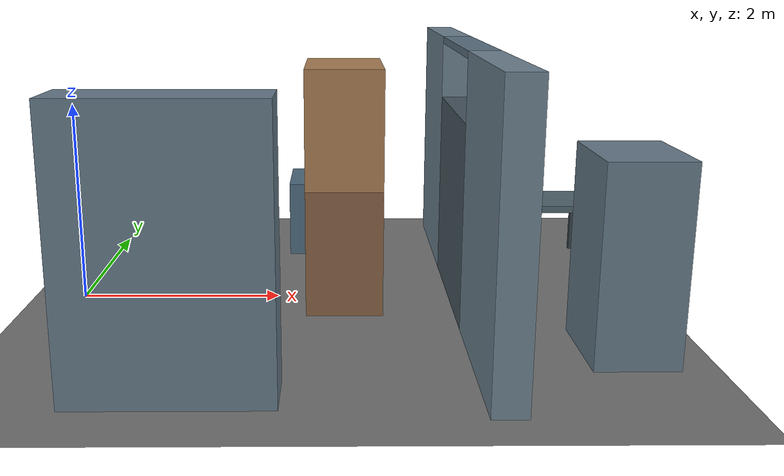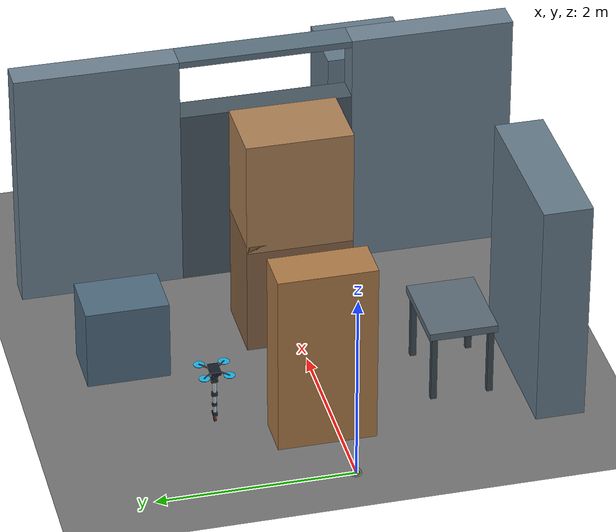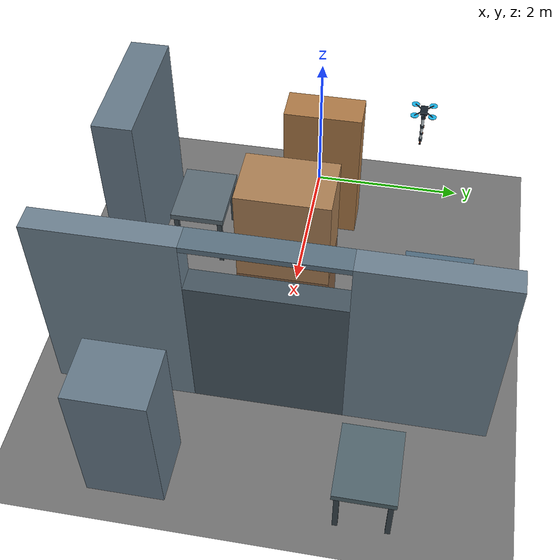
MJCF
<mujoco model="aerial_manipulator_workcell">
  <compiler angle="radian" autolimits="true"/>
  <default>
    <default class="quadrotor_parts"><geom contype="1" conaffinity="1"/></default>
  </default>
  <option timestep="0.001" gravity="0 0 -9.81" integrator="Euler"/>
  <size nuser_site="1"/>
  <statistic center="2.6 0 1.3" extent="4.5"/>
  <custom>
    <numeric name="planning_bounds" data="-0.6 -2.4 -2.7 5.8 2.4 -0.85"/>
    <numeric name="flight_limits" data="3 2 8 12 0.7"/>
    <numeric name="pick_position_ned" data="1.45 1.35 -0.95"/>
    <numeric name="place_position_ned" data="5.05 -1.30 -0.85"/>
    <numeric name="pick_yaw" data="0"/>
    <numeric name="place_yaw" data="0"/>
    <numeric name="pick_nominal_joints" data="0 0 0 0"/>
    <numeric name="place_nominal_joints" data="0 0 0 0"/>
    <numeric name="gripper_open" data="0.060"/>
    <numeric name="gripper_closed" data="0.025"/>
  </custom>
  <visual>
    <global azimuth="135" elevation="-25"/>
    <map znear="0.01" zfar="30"/>
    <quality offsamples="4"/>
  </visual>
  <asset>
    <texture name="ground_grid" type="2d" builtin="checker" width="512" height="512"
             rgb1="0.55 0.55 0.55" rgb2="0.35 0.35 0.35"/>
    <material name="ground" texture="ground_grid" texrepeat="8 8" texuniform="true"
              reflectance="0.1"/>
  </asset>
  <worldbody>
    <light name="sun" pos="2.5 0 8" dir="-0.3 0.2 -1" directional="true"/>
    <geom name="ground" type="plane" size="8 5 0.1" material="ground"/>

    <!-- NED coordinates are converted as (x,y,z)_ENU=(x,-y,-z)_NED. -->
    <!-- Loaded pallet stacks and the pick-side storage rack. -->
    <geom name="obstacle_entry_cartons" type="box" pos="0.775 0.15 0.975"
          size="0.225 0.5 0.975" rgba="0.68 0.48 0.28 1"/>
    <geom name="obstacle_rear_storage" type="box" pos="1.30 -2.20 1.20"
          size="0.85 0.25 1.20" rgba="0.40 0.48 0.54 1"/>

    <!-- Open pick bench: an 8 cm work surface on four 6 cm square legs. -->
    <geom name="obstacle_pick_bench_top" type="box" pos="1.45 -1.35 0.76"
          size="0.45 0.35 0.04" rgba="0.36 0.42 0.46 1"/>
    <geom name="obstacle_pick_bench_leg_fl" type="box" pos="1.06 -1.06 0.36"
          size="0.03 0.03 0.36" rgba="0.24 0.29 0.32 1"/>
    <geom name="obstacle_pick_bench_leg_fr" type="box" pos="1.84 -1.06 0.36"
          size="0.03 0.03 0.36" rgba="0.24 0.29 0.32 1"/>
    <geom name="obstacle_pick_bench_leg_bl" type="box" pos="1.06 -1.64 0.36"
          size="0.03 0.03 0.36" rgba="0.24 0.29 0.32 1"/>
    <geom name="obstacle_pick_bench_leg_br" type="box" pos="1.84 -1.64 0.36"
          size="0.03 0.03 0.36" rgba="0.24 0.29 0.32 1"/>

    <!-- A loaded central rack island leaves broad north and south routes. -->
    <geom name="obstacle_rack_island_lower" type="box" pos="2.675 0 0.62"
          size="0.375 0.55 0.62" rgba="0.53 0.39 0.27 1"/>
    <geom name="obstacle_rack_island_upper" type="box" pos="2.675 0 1.78"
          size="0.375 0.55 0.62" rgba="0.67 0.50 0.33 1"/>
    <geom name="obstacle_low_tote" type="box" pos="2.35 1.825 0.425"
          size="0.30 0.425 0.425" rgba="0.31 0.42 0.50 1"/>

    <!-- Transfer machine: conveyor, overhead housing, and side cabinets.
         The 1.80 m wide by 0.58 m high opening is raised 1 m to z=[1.95, 2.53]. -->
    <geom name="obstacle_transfer_conveyor" type="box" pos="3.90 0 0.975"
          size="0.15 0.90 0.975" rgba="0.28 0.34 0.38 1"/>
    <geom name="obstacle_transfer_hood" type="box" pos="3.90 0 2.565"
          size="0.15 0.90 0.035" rgba="0.36 0.45 0.51 1"/>
    <geom name="obstacle_transfer_cabinet_south" type="box" pos="3.90 1.75 1.30"
          size="0.15 0.85 1.30" rgba="0.43 0.51 0.57 1"/>
    <geom name="obstacle_transfer_cabinet_north" type="box" pos="3.90 -1.75 1.30"
          size="0.15 0.85 1.30" rgba="0.43 0.51 0.57 1"/>

    <!-- Place bench and downstream storage cabinet. -->
    <geom name="obstacle_pack_bench_top" type="box" pos="5.05 1.30 0.66"
          size="0.45 0.35 0.04" rgba="0.32 0.40 0.43 1"/>
    <geom name="obstacle_pack_bench_leg_fl" type="box" pos="4.66 1.01 0.31"
          size="0.03 0.03 0.31" rgba="0.22 0.27 0.30 1"/>
    <geom name="obstacle_pack_bench_leg_fr" type="box" pos="5.44 1.01 0.31"
          size="0.03 0.03 0.31" rgba="0.22 0.27 0.30 1"/>
    <geom name="obstacle_pack_bench_leg_bl" type="box" pos="4.66 1.59 0.31"
          size="0.03 0.03 0.31" rgba="0.22 0.27 0.30 1"/>
    <geom name="obstacle_pack_bench_leg_br" type="box" pos="5.44 1.59 0.31"
          size="0.03 0.03 0.31" rgba="0.22 0.27 0.30 1"/>
    <geom name="obstacle_outbound_storage" type="box" pos="5.125 -1.35 0.90"
          size="0.375 0.45 0.90" rgba="0.40 0.48 0.54 1"/>

    <body name="quadrotor" pos="0 1.4 1.45" childclass="quadrotor_parts">
      <include file="../model/aerial_manipulator.xml"/>
    </body>
    <body name="payload_marker" mocap="true">
      <geom name="payload_marker_geom" type="sphere" size="0.035"
            rgba="0.95 0.35 0.08 1" contype="0" conaffinity="0"/>
    </body>
    <body name="pick_target_marker" mocap="true">
      <geom name="pick_target_geom" type="sphere" size="0.055"
            rgba="0.2 0.9 0.35 0.35" contype="0" conaffinity="0"/>
    </body>
    <body name="place_target_marker" mocap="true">
      <geom name="place_target_geom" type="sphere" size="0.055"
            rgba="0.2 0.45 1.0 0.35" contype="0" conaffinity="0"/>
    </body>
  </worldbody>
  <actuator>
    <motor name="arm_motor_0" joint="arm_joint_0" ctrlrange="-0.8 0.8" ctrllimited="true"/>
    <motor name="arm_motor_1" joint="arm_joint_1" ctrlrange="-0.8 0.8" ctrllimited="true"/>
    <motor name="arm_motor_2" joint="arm_joint_2" ctrlrange="-0.6 0.6" ctrllimited="true"/>
    <motor name="arm_motor_3" joint="arm_joint_3" ctrlrange="-0.4 0.4" ctrllimited="true"/>
    <position name="gripper_position" joint="gripper_left_joint" kp="120" kv="3"
              ctrlrange="0 0.025" ctrllimited="true" forcerange="-2 2" forcelimited="true"/>
  </actuator>
  <equality>
    <joint name="gripper_finger_sync" joint1="gripper_right_joint"
           joint2="gripper_left_joint" polycoef="0 1 0 0 0"/>
  </equality>
</mujoco>

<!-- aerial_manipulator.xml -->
<mujocoinclude>
  <!-- Quadrotor base with a four-joint arm and lightweight parallel gripper. -->
    <site name="planning_sphere_01" type="sphere" pos="0 0 0" size="0.098" group="5" rgba="0.2 0.6 1 0.15" />
    <site name="planning_sphere_02" type="sphere" pos="-0.120208 -0.120208 0" size="0.08" group="5" rgba="0.2 0.6 1 0.15" />
    <site name="planning_sphere_03" type="sphere" pos="-0.120208 0.120208 0" size="0.08" group="5" rgba="0.2 0.6 1 0.15" />
    <site name="planning_sphere_04" type="sphere" pos="0.120208 -0.120208 0" size="0.08" group="5" rgba="0.2 0.6 1 0.15" />
    <site name="planning_sphere_05" type="sphere" pos="0.120208 0.120208 0" size="0.08" group="5" rgba="0.2 0.6 1 0.15" />
  <freejoint name="quadrotor_freejoint" />
  <inertial pos="0 0 0" mass="0.5" diaginertia="0.0023 0.0023 0.0046" />
  <geom name="body" type="box" size="0.08 0.05 0.02" rgba="0.08 0.12 0.16 1" contype="1" conaffinity="1" />
  <geom name="arm_0" type="capsule" fromto="-0.120208 0.120208 0 0.120208 -0.120208 0" size="0.008" rgba="0.25 0.25 0.28 1" />
  <geom name="arm_1" type="capsule" fromto="-0.120208 -0.120208 0 0.120208 0.120208 0" size="0.008" rgba="0.25 0.25 0.28 1" />
  <site name="rotor_0" pos="0.120208 0.120208 0" size="0.008" user="1" rgba="0 0.7 1 1" />
  <site name="rotor_1" pos="0.120208 -0.120208 0" size="0.008" user="-1" rgba="0 0.7 1 1" />
  <site name="rotor_2" pos="-0.120208 -0.120208 0" size="0.008" user="1" rgba="0 0.7 1 1" />
  <site name="rotor_3" pos="-0.120208 0.120208 0" size="0.008" user="-1" rgba="0 0.7 1 1" />
  <geom name="rotor_visual_0" type="cylinder" pos="0.120208 0.120208 0" size="0.055 0.002" rgba="0.1 0.7 0.9 1" />
  <geom name="rotor_visual_1" type="cylinder" pos="0.120208 -0.120208 0" size="0.055 0.002" rgba="0.1 0.7 0.9 1" />
  <geom name="rotor_visual_2" type="cylinder" pos="-0.120208 -0.120208 0" size="0.055 0.002" rgba="0.1 0.7 0.9 1" />
  <geom name="rotor_visual_3" type="cylinder" pos="-0.120208 0.120208 0" size="0.055 0.002" rgba="0.1 0.7 0.9 1" />
  <!-- Arm links and gripper dimensions are simulation-scale assumptions. -->
  <body name="arm_base" pos="0 0 -0.055">
    <site name="planning_sphere_06" type="sphere" pos="0 0 -0.01" size="0.04" group="5" rgba="0.2 0.6 1 0.15" />
    <site name="planning_sphere_07" type="sphere" pos="0 0 -0.06" size="0.027" group="5" rgba="0.2 0.6 1 0.15" />
    <joint name="arm_joint_0" type="hinge" axis="0 0 1" range="-2.8 2.8" damping="0.08" armature="0.002" />
    <inertial pos="0 0 -0.020" mass="0.015" diaginertia="0.000012 0.000012 0.000008" />
    <geom name="arm_yaw_housing" type="cylinder" pos="0 0 -0.010" size="0.034 0.020" rgba="0.12 0.17 0.22 1" />
    <geom name="arm_yaw_cap" type="cylinder" pos="0 0 -0.032" size="0.025 0.005" rgba="0.88 0.34 0.12 1" contype="0" conaffinity="0" />
    <geom name="arm_link_0" type="capsule" fromto="0 0 0 0 0 -0.06" size="0.018" />
    <body name="arm_link_1_body" pos="0 0 -0.06">
    <site name="planning_sphere_08" type="sphere" pos="0 0 0" size="0.043" group="5" rgba="0.2 0.6 1 0.15" />
    <site name="planning_sphere_09" type="sphere" pos="0 0 -0.075" size="0.047" group="5" rgba="0.2 0.6 1 0.15" />
    <site name="planning_sphere_10" type="sphere" pos="0 0 -0.15" size="0.034" group="5" rgba="0.2 0.6 1 0.15" />
      <joint name="arm_joint_1" type="hinge" axis="0 1 0" range="-2.2 2.2" damping="0.06" armature="0.0015" />
      <inertial pos="0 0 -0.08" mass="0.035" diaginertia="0.000080 0.000080 0.000018" />
      <geom name="shoulder_housing" type="cylinder" size="0.031 0.028" quat="0.707107 0.707107 0 0" rgba="0.12 0.17 0.22 1" />
      <geom name="shoulder_cap" type="cylinder" pos="0 0.029 0" size="0.020 0.005" quat="0.707107 0.707107 0 0" rgba="0.88 0.34 0.12 1" contype="0" conaffinity="0" />
      <geom name="arm_link_1" type="capsule" fromto="0 0 0 0 0 -0.16" size="0.020" rgba="0.72 0.76 0.78 1" />
      <body name="arm_link_2_body" pos="0 0 -0.16">
    <site name="planning_sphere_11" type="sphere" pos="0 0 0" size="0.038" group="5" rgba="0.2 0.6 1 0.15" />
    <site name="planning_sphere_12" type="sphere" pos="0 0 -0.065" size="0.041" group="5" rgba="0.2 0.6 1 0.15" />
    <site name="planning_sphere_13" type="sphere" pos="0 0 -0.12" size="0.025" group="5" rgba="0.2 0.6 1 0.15" />
        <joint name="arm_joint_2" type="hinge" axis="0 1 0" range="-2.4 2.4" damping="0.05" armature="0.001" />
        <inertial pos="0 0 -0.06" mass="0.025" diaginertia="0.000030 0.000030 0.000006" />
        <geom name="elbow_housing" type="cylinder" size="0.028 0.025" quat="0.707107 0.707107 0 0" rgba="0.12 0.17 0.22 1" />
        <geom name="elbow_cap" type="cylinder" pos="0 0.026 0" size="0.018 0.005" quat="0.707107 0.707107 0 0" rgba="0.88 0.34 0.12 1" contype="0" conaffinity="0" />
        <geom name="arm_link_2" type="capsule" fromto="0 0 0 0 0 -0.12" size="0.018" rgba="0.72 0.76 0.78 1" />
        <body name="arm_link_3_body" pos="0 0 -0.12">
    <site name="planning_sphere_14" type="sphere" pos="0 0 0" size="0.032" group="5" rgba="0.2 0.6 1 0.15" />
    <site name="planning_sphere_15" type="sphere" pos="0 0 -0.061" size="0.036" group="5" rgba="0.2 0.6 1 0.15" />
    <site name="planning_sphere_16" type="sphere" pos="0 0 -0.09" size="0.018" group="5" rgba="0.2 0.6 1 0.15" />
          <joint name="arm_joint_3" type="hinge" axis="0 1 0" range="-2.4 2.4" damping="0.04" armature="0.0008" />
          <inertial pos="0 0 -0.045" mass="0.015" diaginertia="0.000011 0.000011 0.000003" />
          <geom name="wrist_housing" type="cylinder" size="0.023 0.021" quat="0.707107 0.707107 0 0" rgba="0.12 0.17 0.22 1" />
          <geom name="wrist_cap" type="cylinder" pos="0 0.022 0" size="0.015 0.004" quat="0.707107 0.707107 0 0" rgba="0.88 0.34 0.12 1" contype="0" conaffinity="0" />
          <geom name="arm_link_3" type="capsule" fromto="0 0 0 0 0 -0.09" size="0.016" rgba="0.72 0.76 0.78 1" />
          <!-- Frames used by end-effector pose, Jacobian, and grasp queries. -->
          <site name="tool_frame" pos="0 0 -0.09" size="0.010" rgba="0.95 0.3 0.1 1" />
          <body name="gripper_palm_body" pos="0 0 -0.105">
    <site name="planning_sphere_17" type="sphere" pos="0 0 0" size="0.043" group="5" rgba="0.2 0.6 1 0.15" />
            <site name="grasp_frame" pos="0 0 -0.065" size="0.008" rgba="0.2 0.9 0.35 1" />
            <inertial pos="0 0 0" mass="0.015" diaginertia="0.000008 0.000012 0.000016" />
            <geom name="gripper_palm" type="box" size="0.034 0.022 0.014" rgba="0.12 0.17 0.22 1" />
            <body name="gripper_left_body" pos="-0.018 0 -0.01">
    <site name="planning_sphere_18" type="sphere" pos="0 0 -0.018" size="0.028" group="5" rgba="0.2 0.6 1 0.15" />
    <site name="planning_sphere_19" type="sphere" pos="0 0 -0.055" size="0.024" group="5" rgba="0.2 0.6 1 0.15" />
              <joint name="gripper_left_joint" type="slide" axis="-1 0 0" range="0 0.025" damping="0.25" armature="0.0002" />
              <inertial pos="0 0 -0.033" mass="0.004" diaginertia="0.0000015 0.0000015 0.0000002" />
              <geom name="gripper_finger_left" type="capsule" fromto="0 0 0 0 0 -0.065" size="0.007" rgba="0.88 0.34 0.12 1" />
              <geom name="gripper_pad_left" type="box" pos="0 0 -0.059" size="0.008 0.012 0.010" rgba="0.22 0.24 0.26 1" />
            </body>
            <body name="gripper_right_body" pos="0.018 0 -0.01">
    <site name="planning_sphere_20" type="sphere" pos="0 0 -0.018" size="0.028" group="5" rgba="0.2 0.6 1 0.15" />
    <site name="planning_sphere_21" type="sphere" pos="0 0 -0.055" size="0.024" group="5" rgba="0.2 0.6 1 0.15" />
              <joint name="gripper_right_joint" type="slide" axis="1 0 0" range="0 0.025" damping="0.25" armature="0.0002" />
              <inertial pos="0 0 -0.033" mass="0.004" diaginertia="0.0000015 0.0000015 0.0000002" />
              <geom name="gripper_finger_right" type="capsule" fromto="0 0 0 0 0 -0.065" size="0.007" rgba="0.88 0.34 0.12 1" />
              <geom name="gripper_pad_right" type="box" pos="0 0 -0.059" size="0.008 0.012 0.010" rgba="0.22 0.24 0.26 1" />
            </body>
          </body>
        </body>
      </body>
    </body>
  </body>
</mujocoinclude>
